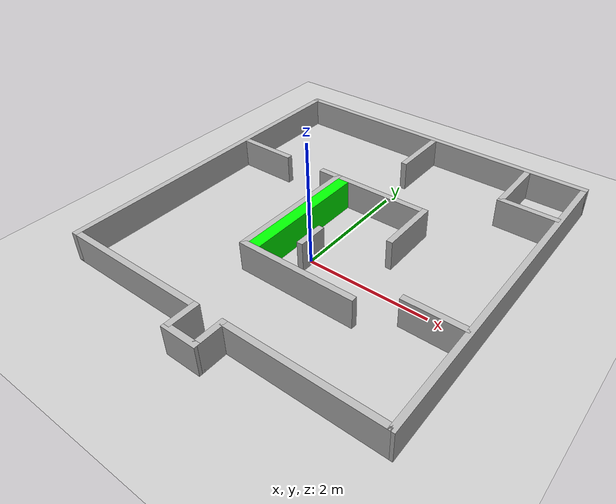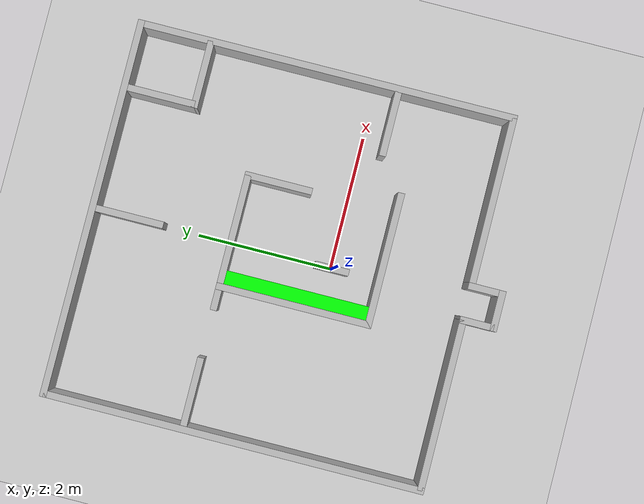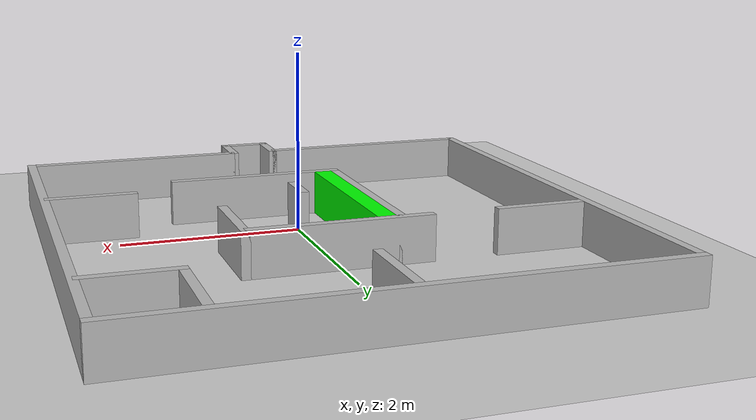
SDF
<sdf version="1.6">
 <world name="default">
  <include><uri>model://ground_plane</uri></include>
  <include><uri>model://sun</uri></include>
  <scene><shadows>false</shadows></scene>
  <physics type="ode">
   <real_time_update_rate>1000.0</real_time_update_rate>
   <max_step_size>0.001</max_step_size>
   <real_time_factor>1</real_time_factor>
  </physics>
  <model name="wall_north_left">
   <static>true</static>
   <link name="link">
    <collision name="collision"><geometry><box><size>5.6 0.1 0.5</size></box></geometry></collision>
    <visual name="visual"><geometry><box><size>5.6 0.1 0.5</size></box></geometry></visual>
    <pose>0 3.55 0.25 0 0 0</pose>
   </link>
  </model>
  <model name="wall_south_left">
   <static>true</static>
   <link name="link">
    <collision name="collision"><geometry><box><size>2.5 0.1 0.5</size></box></geometry></collision>
    <visual name="visual"><geometry><box><size>2.5 0.1 0.5</size></box></geometry></visual>
    <pose>-1.5 -2 0.25 0 0 0</pose>
   </link>
  </model>
  <model name="wall_south_right">
   <static>true</static>
   <link name="link">
    <collision name="collision"><geometry><box><size>2.5 0.1 0.5</size></box></geometry></collision>
    <visual name="visual"><geometry><box><size>2.5 0.1 0.5</size></box></geometry></visual>
    <pose>1.5 -2 0.25 0 0 0</pose>
   </link>
  </model>
  <model name="entry_nook">
   <static>true</static>
   <link name="link">
    <collision name="collision"><geometry><box><size>0.6 0.1 0.5</size></box></geometry></collision>
    <visual name="visual"><geometry><box><size>0.6 0.1 0.5</size></box></geometry></visual>
    <pose>0 -2.45 0.25 0 0 0</pose>
   </link>
  </model>
  <model name="entry_2">
   <static>true</static>
   <link name="link">
    <collision name="collision"><geometry><box><size>0.1 0.5 0.5</size></box></geometry></collision>
    <visual name="visual"><geometry><box><size>0.1 0.5 0.5</size></box></geometry></visual>
    <pose>-0.25 -2.2 0.25 0 0 0</pose>
   </link>
  </model>
  <model name="entry_1">
   <static>true</static>
   <link name="link">
    <collision name="collision"><geometry><box><size>0.1 0.5 0.5</size></box></geometry></collision>
    <visual name="visual"><geometry><box><size>0.1 0.5 0.5</size></box></geometry></visual>
    <pose>0.25 -2.2 0.25 0 0 0</pose>
   </link>
  </model>
  <model name="wall_east">
   <static>true</static>
   <link name="link">
    <collision name="collision"><geometry><box><size>0.1 5.6 0.5</size></box></geometry></collision>
    <visual name="visual"><geometry><box><size>0.1 5.6 0.5</size></box></geometry></visual>
    <pose>2.75 0.75 0.25 0 0 0</pose>
   </link>
  </model>
  <model name="wall_west">
   <static>true</static>
   <link name="link">
    <collision name="collision"><geometry><box><size>0.1 5.6 0.5</size></box></geometry></collision>
    <visual name="visual"><geometry><box><size>0.1 5.6 0.5</size></box></geometry></visual>
    <pose>-2.75 0.75 0.25 0 0 0</pose>
   </link>
  </model>
  <model name="inner_wall_5">
   <static>true</static>
   <link name="link">
    <collision name="collision"><geometry><box><size>0.1 1 0.5</size></box></geometry></collision>
    <visual name="visual"><geometry><box><size>0.1 1 0.5</size></box></geometry></visual>
    <pose>0 3 0.25 0 0 0</pose>
   </link>
  </model>
  <model name="inner_wall_7">
   <static>true</static>
   <link name="link">
    <collision name="collision"><geometry><box><size>0.1 1 0.5</size></box></geometry></collision>
    <visual name="visual"><geometry><box><size>0.1 1 0.5</size></box></geometry></visual>
    <pose>1.8 3 0.25 0 0 0</pose>
   </link>
  </model>
  <model name="inner_wall_1">
   <static>true</static>
   <link name="link">
    <collision name="collision"><geometry><box><size>1 0.1 0.5</size></box></geometry></collision>
    <visual name="visual"><geometry><box><size>1 0.1 0.5</size></box></geometry></visual>
    <pose>-2.2 1.5 0.25 0 0 0</pose>
   </link>
  </model>
  <model name="inner_wall_2">
   <static>true</static>
   <link name="link">
    <collision name="collision"><geometry><box><size>2 0.1 0.5</size></box></geometry></collision>
    <visual name="visual"><geometry><box><size>2 0.1 0.5</size></box></geometry></visual>
    <pose>0.3 -0.7 0.25 0 0 0</pose>
   </link>
  </model>
  <model name="central_wall_3">
   <static>true</static>
   <link name="link">
    <collision name="collision"><geometry><box><size>1 0.1 0.5</size></box></geometry></collision>
    <visual name="visual"><geometry><box><size>1 0.1 0.5</size></box></geometry></visual>
    <pose>2.25 -0.3 0.25 0 0 0</pose>
   </link>
  </model>
  <model name="central_wall_8">
   <static>true</static>
   <link name="link">
    <collision name="collision"><geometry><box><size>0.1 0.5 0.5</size></box></geometry></collision>
    <visual name="visual"><geometry><box><size>0.1 0.5 0.5</size></box></geometry></visual>
    <pose>0 0 0.25 0 0 0</pose>
   </link>
  </model>
  <model name="central_wall_7">
   <static>true</static>
   <link name="link">
    <collision name="collision"><geometry><box><size>1 0.1 0.5</size></box></geometry></collision>
    <visual name="visual"><geometry><box><size>1 0.1 0.5</size></box></geometry></visual>
    <pose>2.25 2.5 0.25 0 0 0</pose>
   </link>
  </model>
  <model name="central_wall_near_finish">
   <static>true</static>
   <link name="link">
    <collision name="collision"><geometry><box><size>2 0.1 0.5</size></box></geometry></collision>
    <visual name="visual"><geometry><box><size>2 0.1 0.5</size></box></geometry></visual>
    <pose>0 1.5 0.25 0 0 0</pose>
   </link>
  </model>
  <model name="inner_wall_6">
   <static>true</static>
   <link name="link">
    <collision name="collision"><geometry><box><size>0.1 2.3 0.5</size></box></geometry></collision>
    <visual name="visual"><geometry><box><size>0.1 2.3 0.5</size></box></geometry></visual>
    <pose>-0.65 0.4 0.25 0 0 0</pose>
   </link>
  </model>
  <model name="central_wall_right">
   <static>true</static>
   <link name="link">
    <collision name="collision"><geometry><box><size>0.1 1 0.5</size></box></geometry></collision>
    <visual name="visual"><geometry><box><size>0.1 1 0.5</size></box></geometry></visual>
    <pose>1 1.05 0.25 0 0 0</pose>
   </link>
  </model>
  <model name="green_block">
   <pose>-0.5 0.4 0.25 0 0 0</pose>
   <static>true</static>
   <link name="link">
    <visual name="visual">
     <geometry><box><size>0.2 2.1 0.5</size></box></geometry>
     <material><name>Gazebo/Green</name><ambient>0 1 0 1</ambient><diffuse>0 1 0 1</diffuse></material>
    </visual>
   </link>
  </model>
 </world>
</sdf>
